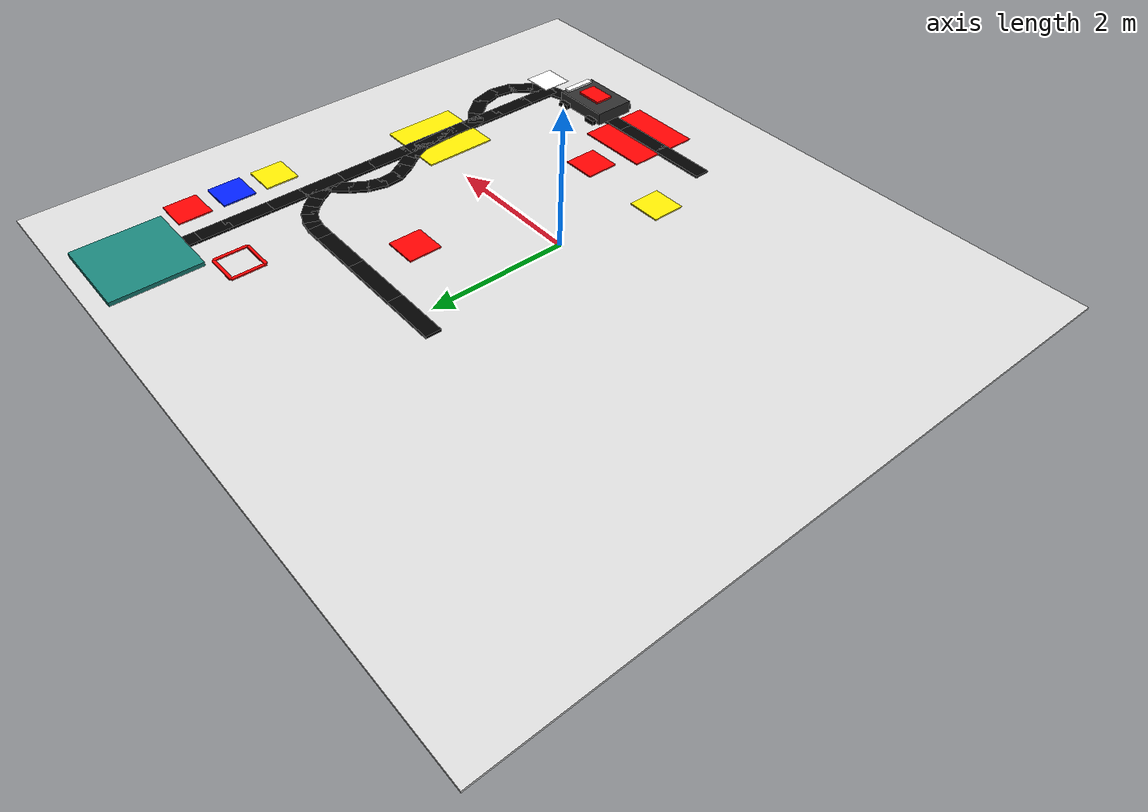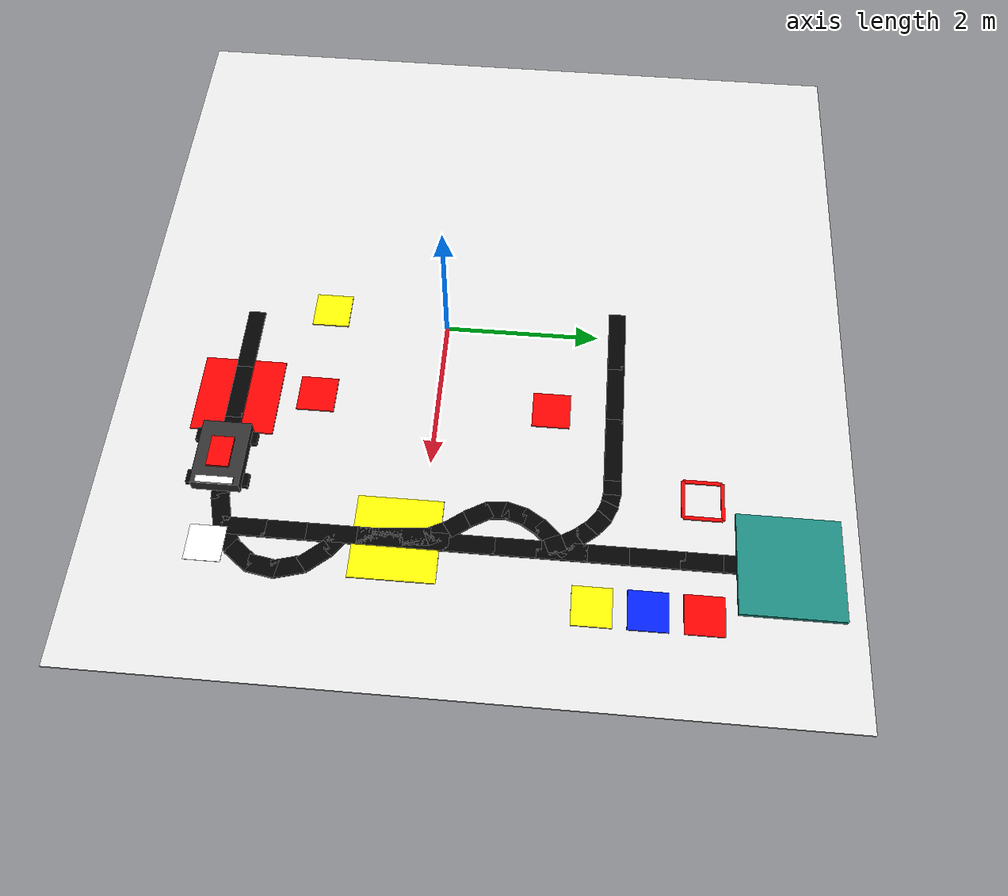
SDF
<sdf version="1.6">
 <world name="agv_factory_final_box_agv_v2">
  <include><uri>model://sun</uri></include>
  <model name="factory_floor">
   <static>true</static>
   <pose>0.0000 0.5500 -0.0150 0 0 0.0000</pose>
   <link name="link">
    <collision name="collision"><geometry><box><size>9.8000 9.3000 0.0300</size></box></geometry></collision>
    <visual name="visual">
     <geometry><box><size>9.8000 9.3000 0.0300</size></box></geometry>
     <material><ambient>0.86 0.86 0.86 1.0</ambient><diffuse>0.86 0.86 0.86 1.0</diffuse></material>
    </visual>
   </link>
  </model>
  <model name="main_loop_01">
   <static>true</static>
   <pose>1.8750 -2.5500 0.0175 0 0 3.1416</pose>
   <link name="link">
    <collision name="collision"><geometry><box><size>0.7100 0.2200 0.0350</size></box></geometry></collision>
    <visual name="visual">
     <geometry><box><size>0.7100 0.2200 0.0350</size></box></geometry>
     <material><ambient>0 0 0 1</ambient><diffuse>0 0 0 1</diffuse></material>
    </visual>
   </link>
  </model>
  <model name="main_loop_02">
   <static>true</static>
   <pose>1.1750 -2.5500 0.0175 0 0 3.1416</pose>
   <link name="link">
    <collision name="collision"><geometry><box><size>0.8100 0.2200 0.0350</size></box></geometry></collision>
    <visual name="visual">
     <geometry><box><size>0.8100 0.2200 0.0350</size></box></geometry>
     <material><ambient>0 0 0 1</ambient><diffuse>0 0 0 1</diffuse></material>
    </visual>
   </link>
  </model>
  <model name="main_loop_03">
   <static>true</static>
   <pose>0.4000 -2.5500 0.0175 0 0 3.1416</pose>
   <link name="link">
    <collision name="collision"><geometry><box><size>0.8600 0.2200 0.0350</size></box></geometry></collision>
    <visual name="visual">
     <geometry><box><size>0.8600 0.2200 0.0350</size></box></geometry>
     <material><ambient>0 0 0 1</ambient><diffuse>0 0 0 1</diffuse></material>
    </visual>
   </link>
  </model>
  <model name="main_loop_42">
   <static>true</static>
   <pose>0.0500 2.2500 0.0175 0 0 0.0000</pose>
   <link name="link">
    <collision name="collision"><geometry><box><size>0.8600 0.2200 0.0350</size></box></geometry></collision>
    <visual name="visual">
     <geometry><box><size>0.8600 0.2200 0.0350</size></box></geometry>
     <material><ambient>0 0 0 1</ambient><diffuse>0 0 0 1</diffuse></material>
    </visual>
   </link>
  </model>
  <model name="main_loop_43">
   <static>true</static>
   <pose>0.8500 2.2500 0.0175 0 0 0.0000</pose>
   <link name="link">
    <collision name="collision"><geometry><box><size>0.8600 0.2200 0.0350</size></box></geometry></collision>
    <visual name="visual">
     <geometry><box><size>0.8600 0.2200 0.0350</size></box></geometry>
     <material><ambient>0 0 0 1</ambient><diffuse>0 0 0 1</diffuse></material>
    </visual>
   </link>
  </model>
  <model name="main_loop_44">
   <static>true</static>
   <pose>1.6500 2.2500 0.0175 0 0 0.0000</pose>
   <link name="link">
    <collision name="collision"><geometry><box><size>0.8600 0.2200 0.0350</size></box></geometry></collision>
    <visual name="visual">
     <geometry><box><size>0.8600 0.2200 0.0350</size></box></geometry>
     <material><ambient>0 0 0 1</ambient><diffuse>0 0 0 1</diffuse></material>
    </visual>
   </link>
  </model>
  <model name="main_loop_45">
   <static>true</static>
   <pose>2.1450 2.2500 0.0175 0 0 0.0000</pose>
   <link name="link">
    <collision name="collision"><geometry><box><size>0.2500 0.2200 0.0350</size></box></geometry></collision>
    <visual name="visual">
     <geometry><box><size>0.2500 0.2200 0.0350</size></box></geometry>
     <material><ambient>0 0 0 1</ambient><diffuse>0 0 0 1</diffuse></material>
    </visual>
   </link>
  </model>
  <model name="main_loop_46">
   <static>true</static>
   <pose>2.3300 2.2350 0.0175 0 0 -0.1651</pose>
   <link name="link">
    <collision name="collision"><geometry><box><size>0.2425 0.2200 0.0350</size></box></geometry></collision>
    <visual name="visual">
     <geometry><box><size>0.2425 0.2200 0.0350</size></box></geometry>
     <material><ambient>0 0 0 1</ambient><diffuse>0 0 0 1</diffuse></material>
    </visual>
   </link>
  </model>
  <model name="main_loop_47">
   <static>true</static>
   <pose>2.5000 2.1850 0.0175 0 0 -0.4124</pose>
   <link name="link">
    <collision name="collision"><geometry><box><size>0.2346 0.2200 0.0350</size></box></geometry></collision>
    <visual name="visual">
     <geometry><box><size>0.2346 0.2200 0.0350</size></box></geometry>
     <material><ambient>0 0 0 1</ambient><diffuse>0 0 0 1</diffuse></material>
    </visual>
   </link>
  </model>
  <model name="main_loop_48">
   <static>true</static>
   <pose>2.6500 2.0900 0.0175 0 0 -0.7086</pose>
   <link name="link">
    <collision name="collision"><geometry><box><size>0.2444 0.2200 0.0350</size></box></geometry></collision>
    <visual name="visual">
     <geometry><box><size>0.2444 0.2200 0.0350</size></box></geometry>
     <material><ambient>0 0 0 1</ambient><diffuse>0 0 0 1</diffuse></material>
    </visual>
   </link>
  </model>
  <model name="main_loop_49">
   <static>true</static>
   <pose>2.7800 1.9550 0.0175 0 0 -0.8961</pose>
   <link name="link">
    <collision name="collision"><geometry><box><size>0.2521 0.2200 0.0350</size></box></geometry></collision>
    <visual name="visual">
     <geometry><box><size>0.2521 0.2200 0.0350</size></box></geometry>
     <material><ambient>0 0 0 1</ambient><diffuse>0 0 0 1</diffuse></material>
    </visual>
   </link>
  </model>
  <model name="main_loop_50">
   <static>true</static>
   <pose>2.8900 1.8000 0.0175 0 0 -1.0122</pose>
   <link name="link">
    <collision name="collision"><geometry><box><size>0.2487 0.2200 0.0350</size></box></geometry></collision>
    <visual name="visual">
     <geometry><box><size>0.2487 0.2200 0.0350</size></box></geometry>
     <material><ambient>0 0 0 1</ambient><diffuse>0 0 0 1</diffuse></material>
    </visual>
   </link>
  </model>
  <model name="main_loop_51">
   <static>true</static>
   <pose>2.9950 1.6700 0.0175 0 0 -0.7378</pose>
   <link name="link">
    <collision name="collision"><geometry><box><size>0.2087 0.2200 0.0350</size></box></geometry></collision>
    <visual name="visual">
     <geometry><box><size>0.2087 0.2200 0.0350</size></box></geometry>
     <material><ambient>0 0 0 1</ambient><diffuse>0 0 0 1</diffuse></material>
    </visual>
   </link>
  </model>
  <model name="main_loop_52">
   <static>true</static>
   <pose>2.9800 1.5900 0.0175 0 0 -2.7367</pose>
   <link name="link">
    <collision name="collision"><geometry><box><size>0.2123 0.2200 0.0350</size></box></geometry></collision>
    <visual name="visual">
     <geometry><box><size>0.2123 0.2200 0.0350</size></box></geometry>
     <material><ambient>0 0 0 1</ambient><diffuse>0 0 0 1</diffuse></material>
    </visual>
   </link>
  </model>
  <model name="main_loop_53">
   <static>true</static>
   <pose>2.8350 1.4800 0.0175 0 0 -2.3239</pose>
   <link name="link">
    <collision name="collision"><geometry><box><size>0.2793 0.2200 0.0350</size></box></geometry></collision>
    <visual name="visual">
     <geometry><box><size>0.2793 0.2200 0.0350</size></box></geometry>
     <material><ambient>0 0 0 1</ambient><diffuse>0 0 0 1</diffuse></material>
    </visual>
   </link>
  </model>
  <model name="main_loop_54">
   <static>true</static>
   <pose>2.7000 1.3000 0.0175 0 0 -2.1112</pose>
   <link name="link">
    <collision name="collision"><geometry><box><size>0.2932 0.2200 0.0350</size></box></geometry></collision>
    <visual name="visual">
     <geometry><box><size>0.2932 0.2200 0.0350</size></box></geometry>
     <material><ambient>0 0 0 1</ambient><diffuse>0 0 0 1</diffuse></material>
    </visual>
   </link>
  </model>
  <model name="main_loop_55">
   <static>true</static>
   <pose>2.6100 1.0900 0.0175 0 0 -1.8370</pose>
   <link name="link">
    <collision name="collision"><geometry><box><size>0.2880 0.2200 0.0350</size></box></geometry></collision>
    <visual name="visual">
     <geometry><box><size>0.2880 0.2200 0.0350</size></box></geometry>
     <material><ambient>0 0 0 1</ambient><diffuse>0 0 0 1</diffuse></material>
    </visual>
   </link>
  </model>
  <model name="main_loop_56">
   <static>true</static>
   <pose>2.5900 0.8700 0.0175 0 0 -1.4801</pose>
   <link name="link">
    <collision name="collision"><geometry><box><size>0.2809 0.2200 0.0350</size></box></geometry></collision>
    <visual name="visual">
     <geometry><box><size>0.2809 0.2200 0.0350</size></box></geometry>
     <material><ambient>0 0 0 1</ambient><diffuse>0 0 0 1</diffuse></material>
    </visual>
   </link>
  </model>
  <model name="main_loop_57">
   <static>true</static>
   <pose>2.6600 0.6500 0.0175 0 0 -1.0714</pose>
   <link name="link">
    <collision name="collision"><geometry><box><size>0.3106 0.2200 0.0350</size></box></geometry></collision>
    <visual name="visual">
     <geometry><box><size>0.3106 0.2200 0.0350</size></box></geometry>
     <material><ambient>0 0 0 1</ambient><diffuse>0 0 0 1</diffuse></material>
    </visual>
   </link>
  </model>
  <model name="main_loop_58">
   <static>true</static>
   <pose>2.8000 0.4300 0.0175 0 0 -0.9420</pose>
   <link name="link">
    <collision name="collision"><geometry><box><size>0.3320 0.2200 0.0350</size></box></geometry></collision>
    <visual name="visual">
     <geometry><box><size>0.3320 0.2200 0.0350</size></box></geometry>
     <material><ambient>0 0 0 1</ambient><diffuse>0 0 0 1</diffuse></material>
    </visual>
   </link>
  </model>
  <model name="main_loop_59">
   <static>true</static>
   <pose>2.9400 0.2000 0.0175 0 0 -1.1071</pose>
   <link name="link">
    <collision name="collision"><geometry><box><size>0.3283 0.2200 0.0350</size></box></geometry></collision>
    <visual name="visual">
     <geometry><box><size>0.3283 0.2200 0.0350</size></box></geometry>
     <material><ambient>0 0 0 1</ambient><diffuse>0 0 0 1</diffuse></material>
    </visual>
   </link>
  </model>
  <model name="main_loop_60">
   <static>true</static>
   <pose>3.0250 -0.2350 0.0175 0 0 -1.4916</pose>
   <link name="link">
    <collision name="collision"><geometry><box><size>0.6920 0.2200 0.0350</size></box></geometry></collision>
    <visual name="visual">
     <geometry><box><size>0.6920 0.2200 0.0350</size></box></geometry>
     <material><ambient>0 0 0 1</ambient><diffuse>0 0 0 1</diffuse></material>
    </visual>
   </link>
  </model>
  <model name="main_loop_61">
   <static>true</static>
   <pose>3.0500 -0.7500 0.0175 0 0 -1.5708</pose>
   <link name="link">
    <collision name="collision"><geometry><box><size>0.4600 0.2200 0.0350</size></box></geometry></collision>
    <visual name="visual">
     <geometry><box><size>0.4600 0.2200 0.0350</size></box></geometry>
     <material><ambient>0 0 0 1</ambient><diffuse>0 0 0 1</diffuse></material>
    </visual>
   </link>
  </model>
  <model name="main_loop_62">
   <static>true</static>
   <pose>3.1500 -1.0250 0.0175 0 0 -0.6435</pose>
   <link name="link">
    <collision name="collision"><geometry><box><size>0.3100 0.2200 0.0350</size></box></geometry></collision>
    <visual name="visual">
     <geometry><box><size>0.3100 0.2200 0.0350</size></box></geometry>
     <material><ambient>0 0 0 1</ambient><diffuse>0 0 0 1</diffuse></material>
    </visual>
   </link>
  </model>
  <model name="main_loop_63">
   <static>true</static>
   <pose>3.3550 -1.2250 0.0175 0 0 -0.8721</pose>
   <link name="link">
    <collision name="collision"><geometry><box><size>0.3865 0.2200 0.0350</size></box></geometry></collision>
    <visual name="visual">
     <geometry><box><size>0.3865 0.2200 0.0350</size></box></geometry>
     <material><ambient>0 0 0 1</ambient><diffuse>0 0 0 1</diffuse></material>
    </visual>
   </link>
  </model>
  <model name="main_loop_64">
   <static>true</static>
   <pose>3.5050 -1.5150 0.0175 0 0 -1.3045</pose>
   <link name="link">
    <collision name="collision"><geometry><box><size>0.4021 0.2200 0.0350</size></box></geometry></collision>
    <visual name="visual">
     <geometry><box><size>0.4021 0.2200 0.0350</size></box></geometry>
     <material><ambient>0 0 0 1</ambient><diffuse>0 0 0 1</diffuse></material>
    </visual>
   </link>
  </model>
  <model name="main_loop_65">
   <static>true</static>
   <pose>3.5250 -1.8300 0.0175 0 0 -1.7359</pose>
   <link name="link">
    <collision name="collision"><geometry><box><size>0.3641 0.2200 0.0350</size></box></geometry></collision>
    <visual name="visual">
     <geometry><box><size>0.3641 0.2200 0.0350</size></box></geometry>
     <material><ambient>0 0 0 1</ambient><diffuse>0 0 0 1</diffuse></material>
    </visual>
   </link>
  </model>
  <model name="main_loop_66">
   <static>true</static>
   <pose>3.4100 -2.1000 0.0175 0 0 -2.2143</pose>
   <link name="link">
    <collision name="collision"><geometry><box><size>0.3600 0.2200 0.0350</size></box></geometry></collision>
    <visual name="visual">
     <geometry><box><size>0.3600 0.2200 0.0350</size></box></geometry>
     <material><ambient>0 0 0 1</ambient><diffuse>0 0 0 1</diffuse></material>
    </visual>
   </link>
  </model>
  <model name="main_loop_67">
   <static>true</static>
   <pose>3.1800 -2.3100 0.0175 0 0 -2.5703</pose>
   <link name="link">
    <collision name="collision"><geometry><box><size>0.3929 0.2200 0.0350</size></box></geometry></collision>
    <visual name="visual">
     <geometry><box><size>0.3929 0.2200 0.0350</size></box></geometry>
     <material><ambient>0 0 0 1</ambient><diffuse>0 0 0 1</diffuse></material>
    </visual>
   </link>
  </model>
  <model name="main_loop_68">
   <static>true</static>
   <pose>2.8600 -2.4500 0.0175 0 0 -2.8706</pose>
   <link name="link">
    <collision name="collision"><geometry><box><size>0.4336 0.2200 0.0350</size></box></geometry></collision>
    <visual name="visual">
     <geometry><box><size>0.4336 0.2200 0.0350</size></box></geometry>
     <material><ambient>0 0 0 1</ambient><diffuse>0 0 0 1</diffuse></material>
    </visual>
   </link>
  </model>
  <model name="main_loop_69">
   <static>true</static>
   <pose>2.4400 -2.5250 0.0175 0 0 -3.0378</pose>
   <link name="link">
    <collision name="collision"><geometry><box><size>0.5426 0.2200 0.0350</size></box></geometry></collision>
    <visual name="visual">
     <geometry><box><size>0.5426 0.2200 0.0350</size></box></geometry>
     <material><ambient>0 0 0 1</ambient><diffuse>0 0 0 1</diffuse></material>
    </visual>
   </link>
  </model>
  <model name="right_vertical_01">
   <static>true</static>
   <pose>3.0500 -1.6250 0.0175 0 0 1.5708</pose>
   <link name="link">
    <collision name="collision"><geometry><box><size>0.6100 0.2200 0.0350</size></box></geometry></collision>
    <visual name="visual">
     <geometry><box><size>0.6100 0.2200 0.0350</size></box></geometry>
     <material><ambient>0 0 0 1</ambient><diffuse>0 0 0 1</diffuse></material>
    </visual>
   </link>
  </model>
  <model name="right_vertical_02">
   <static>true</static>
   <pose>3.0500 -1.0750 0.0175 0 0 1.5708</pose>
   <link name="link">
    <collision name="collision"><geometry><box><size>0.6100 0.2200 0.0350</size></box></geometry></collision>
    <visual name="visual">
     <geometry><box><size>0.6100 0.2200 0.0350</size></box></geometry>
     <material><ambient>0 0 0 1</ambient><diffuse>0 0 0 1</diffuse></material>
    </visual>
   </link>
  </model>
  <model name="right_vertical_03">
   <static>true</static>
   <pose>3.0500 -0.5250 0.0175 0 0 1.5708</pose>
   <link name="link">
    <collision name="collision"><geometry><box><size>0.6100 0.2200 0.0350</size></box></geometry></collision>
    <visual name="visual">
     <geometry><box><size>0.6100 0.2200 0.0350</size></box></geometry>
     <material><ambient>0 0 0 1</ambient><diffuse>0 0 0 1</diffuse></material>
    </visual>
   </link>
  </model>
  <model name="right_vertical_04">
   <static>true</static>
   <pose>3.0500 0.0250 0.0175 0 0 1.5708</pose>
   <link name="link">
    <collision name="collision"><geometry><box><size>0.6100 0.2200 0.0350</size></box></geometry></collision>
    <visual name="visual">
     <geometry><box><size>0.6100 0.2200 0.0350</size></box></geometry>
     <material><ambient>0 0 0 1</ambient><diffuse>0 0 0 1</diffuse></material>
    </visual>
   </link>
  </model>
  <model name="right_vertical_05">
   <static>true</static>
   <pose>3.0500 0.5750 0.0175 0 0 1.5708</pose>
   <link name="link">
    <collision name="collision"><geometry><box><size>0.6100 0.2200 0.0350</size></box></geometry></collision>
    <visual name="visual">
     <geometry><box><size>0.6100 0.2200 0.0350</size></box></geometry>
     <material><ambient>0 0 0 1</ambient><diffuse>0 0 0 1</diffuse></material>
    </visual>
   </link>
  </model>
  <model name="right_vertical_06">
   <static>true</static>
   <pose>3.0500 1.1250 0.0175 0 0 1.5708</pose>
   <link name="link">
    <collision name="collision"><geometry><box><size>0.6100 0.2200 0.0350</size></box></geometry></collision>
    <visual name="visual">
     <geometry><box><size>0.6100 0.2200 0.0350</size></box></geometry>
     <material><ambient>0 0 0 1</ambient><diffuse>0 0 0 1</diffuse></material>
    </visual>
   </link>
  </model>
  <model name="right_vertical_07">
   <static>true</static>
   <pose>3.0500 1.6750 0.0175 0 0 1.5708</pose>
   <link name="link">
    <collision name="collision"><geometry><box><size>0.6100 0.2200 0.0350</size></box></geometry></collision>
    <visual name="visual">
     <geometry><box><size>0.6100 0.2200 0.0350</size></box></geometry>
     <material><ambient>0 0 0 1</ambient><diffuse>0 0 0 1</diffuse></material>
    </visual>
   </link>
  </model>
  <model name="right_vertical_08">
   <static>true</static>
   <pose>3.0500 2.2250 0.0175 0 0 1.5708</pose>
   <link name="link">
    <collision name="collision"><geometry><box><size>0.6100 0.2200 0.0350</size></box></geometry></collision>
    <visual name="visual">
     <geometry><box><size>0.6100 0.2200 0.0350</size></box></geometry>
     <material><ambient>0 0 0 1</ambient><diffuse>0 0 0 1</diffuse></material>
    </visual>
   </link>
  </model>
  <model name="right_vertical_09">
   <static>true</static>
   <pose>3.0500 2.8000 0.0175 0 0 1.5708</pose>
   <link name="link">
    <collision name="collision"><geometry><box><size>0.6600 0.2200 0.0350</size></box></geometry></collision>
    <visual name="visual">
     <geometry><box><size>0.6600 0.2200 0.0350</size></box></geometry>
     <material><ambient>0 0 0 1</ambient><diffuse>0 0 0 1</diffuse></material>
    </visual>
   </link>
  </model>
  <model name="right_vertical_10">
   <static>true</static>
   <pose>3.0500 3.3250 0.0175 0 0 1.5708</pose>
   <link name="link">
    <collision name="collision"><geometry><box><size>0.5100 0.2200 0.0350</size></box></geometry></collision>
    <visual name="visual">
     <geometry><box><size>0.5100 0.2200 0.0350</size></box></geometry>
     <material><ambient>0 0 0 1</ambient><diffuse>0 0 0 1</diffuse></material>
    </visual>
   </link>
  </model>
  <model name="right_vertical_11">
   <static>true</static>
   <pose>3.0500 3.7250 0.0175 0 0 1.5708</pose>
   <link name="link">
    <collision name="collision"><geometry><box><size>0.4100 0.2200 0.0350</size></box></geometry></collision>
    <visual name="visual">
     <geometry><box><size>0.4100 0.2200 0.0350</size></box></geometry>
     <material><ambient>0 0 0 1</ambient><diffuse>0 0 0 1</diffuse></material>
    </visual>
   </link>
  </model>
  <model name="right_vertical_12">
   <static>true</static>
   <pose>3.0500 4.1750 0.0175 0 0 1.5708</pose>
   <link name="link">
    <collision name="collision"><geometry><box><size>0.6100 0.2200 0.0350</size></box></geometry></collision>
    <visual name="visual">
     <geometry><box><size>0.6100 0.2200 0.0350</size></box></geometry>
     <material><ambient>0 0 0 1</ambient><diffuse>0 0 0 1</diffuse></material>
    </visual>
   </link>
  </model>
  <model name="right_bottom_join_01">
   <static>true</static>
   <pose>3.0500 -2.1500 0.0175 0 0 -1.5708</pose>
   <link name="link">
    <collision name="collision"><geometry><box><size>0.5600 0.2200 0.0350</size></box></geometry></collision>
    <visual name="visual">
     <geometry><box><size>0.5600 0.2200 0.0350</size></box></geometry>
     <material><ambient>0 0 0 1</ambient><diffuse>0 0 0 1</diffuse></material>
    </visual>
   </link>
  </model>
  <model name="red_agv01_start_area">
   <static>true</static>
   <pose>1.2500 -2.5500 0.0100 0 0 0.0000</pose>
   <link name="link">
    <collision name="collision"><geometry><box><size>1.0500 1.0500 0.0200</size></box></geometry></collision>
    <visual name="visual">
     <geometry><box><size>1.0500 1.0500 0.0200</size></box></geometry>
     <material><ambient>1.0 0.0 0.0 1.0</ambient><diffuse>1.0 0.0 0.0 1.0</diffuse></material>
    </visual>
   </link>
  </model>
  <model name="yellow_buffer_area">
   <static>true</static>
   <pose>3.0500 -0.3000 0.0100 0 0 0.0000</pose>
   <link name="link">
    <collision name="collision"><geometry><box><size>1.0500 1.0500 0.0200</size></box></geometry></collision>
    <visual name="visual">
     <geometry><box><size>1.0500 1.0500 0.0200</size></box></geometry>
     <material><ambient>1.0 0.92 0.0 1.0</ambient><diffuse>1.0 0.92 0.0 1.0</diffuse></material>
    </visual>
   </link>
  </model>
  <model name="inout_area">
   <static>true</static>
   <pose>3.0500 4.3500 0.0650 0 0 0.0000</pose>
   <link name="link">
    <collision name="collision"><geometry><box><size>1.2500 1.2500 0.0600</size></box></geometry></collision>
    <visual name="visual">
     <geometry><box><size>1.2500 1.2500 0.0600</size></box></geometry>
     <material><ambient>0.1 0.52 0.48 1.0</ambient><diffuse>0.1 0.52 0.48 1.0</diffuse></material>
    </visual>
   </link>
  </model>
  <model name="finished_red_box">
   <static>true</static>
   <pose>1.1500 1.4500 0.0100 0 0 0.0000</pose>
   <link name="link">
    <collision name="collision"><geometry><box><size>0.4800 0.4800 0.0200</size></box></geometry></collision>
    <visual name="visual">
     <geometry><box><size>0.4800 0.4800 0.0200</size></box></geometry>
     <material><ambient>1.0 0.0 0.0 1.0</ambient><diffuse>1.0 0.0 0.0 1.0</diffuse></material>
    </visual>
   </link>
  </model>
  <model name="material_yellow_box">
   <static>true</static>
   <pose>-0.1500 -1.5500 0.0100 0 0 0.0000</pose>
   <link name="link">
    <collision name="collision"><geometry><box><size>0.4800 0.4800 0.0200</size></box></geometry></collision>
    <visual name="visual">
     <geometry><box><size>0.4800 0.4800 0.0200</size></box></geometry>
     <material><ambient>1.0 0.92 0.0 1.0</ambient><diffuse>1.0 0.92 0.0 1.0</diffuse></material>
    </visual>
   </link>
  </model>
  <model name="material_red_box">
   <static>true</static>
   <pose>1.1500 -1.5500 0.0100 0 0 0.0000</pose>
   <link name="link">
    <collision name="collision"><geometry><box><size>0.4800 0.4800 0.0200</size></box></geometry></collision>
    <visual name="visual">
     <geometry><box><size>0.4800 0.4800 0.0200</size></box></geometry>
     <material><ambient>1.0 0.0 0.0 1.0</ambient><diffuse>1.0 0.0 0.0 1.0</diffuse></material>
    </visual>
   </link>
  </model>
  <model name="inout_red_box">
   <static>true</static>
   <pose>3.7000 3.3500 0.0100 0 0 0.0000</pose>
   <link name="link">
    <collision name="collision"><geometry><box><size>0.4800 0.4800 0.0200</size></box></geometry></collision>
    <visual name="visual">
     <geometry><box><size>0.4800 0.4800 0.0200</size></box></geometry>
     <material><ambient>1.0 0.0 0.0 1.0</ambient><diffuse>1.0 0.0 0.0 1.0</diffuse></material>
    </visual>
   </link>
  </model>
  <model name="inout_yellow_box">
   <static>true</static>
   <pose>3.7000 2.0500 0.0100 0 0 0.0000</pose>
   <link name="link">
    <collision name="collision"><geometry><box><size>0.4800 0.4800 0.0200</size></box></geometry></collision>
    <visual name="visual">
     <geometry><box><size>0.4800 0.4800 0.0200</size></box></geometry>
     <material><ambient>1.0 0.92 0.0 1.0</ambient><diffuse>1.0 0.92 0.0 1.0</diffuse></material>
    </visual>
   </link>
  </model>
  <model name="inout_blue_box">
   <static>true</static>
   <pose>3.7000 2.7000 0.0100 0 0 0.0000</pose>
   <link name="link">
    <collision name="collision"><geometry><box><size>0.4800 0.4800 0.0200</size></box></geometry></collision>
    <visual name="visual">
     <geometry><box><size>0.4800 0.4800 0.0200</size></box></geometry>
     <material><ambient>0.0 0.12 1.0 1.0</ambient><diffuse>0.0 0.12 1.0 1.0</diffuse></material>
    </visual>
   </link>
  </model>
  <model name="inbound_box_top_border">
   <static>true</static>
   <pose>2.2500 3.5900 0.0100 0 0 0.0000</pose>
   <link name="link">
    <collision name="collision"><geometry><box><size>0.4800 0.0450 0.0200</size></box></geometry></collision>
    <visual name="visual">
     <geometry><box><size>0.4800 0.0450 0.0200</size></box></geometry>
     <material><ambient>1.0 0.0 0.0 1.0</ambient><diffuse>1.0 0.0 0.0 1.0</diffuse></material>
    </visual>
   </link>
  </model>
  <model name="inbound_box_bottom_border">
   <static>true</static>
   <pose>2.2500 3.1100 0.0100 0 0 0.0000</pose>
   <link name="link">
    <collision name="collision"><geometry><box><size>0.4800 0.0450 0.0200</size></box></geometry></collision>
    <visual name="visual">
     <geometry><box><size>0.4800 0.0450 0.0200</size></box></geometry>
     <material><ambient>1.0 0.0 0.0 1.0</ambient><diffuse>1.0 0.0 0.0 1.0</diffuse></material>
    </visual>
   </link>
  </model>
  <model name="inbound_box_left_border">
   <static>true</static>
   <pose>2.0100 3.3500 0.0100 0 0 0.0000</pose>
   <link name="link">
    <collision name="collision"><geometry><box><size>0.0450 0.4800 0.0200</size></box></geometry></collision>
    <visual name="visual">
     <geometry><box><size>0.0450 0.4800 0.0200</size></box></geometry>
     <material><ambient>1.0 0.0 0.0 1.0</ambient><diffuse>1.0 0.0 0.0 1.0</diffuse></material>
    </visual>
   </link>
  </model>
  <model name="inbound_box_right_border">
   <static>true</static>
   <pose>2.4900 3.3500 0.0100 0 0 0.0000</pose>
   <link name="link">
    <collision name="collision"><geometry><box><size>0.0450 0.4800 0.0200</size></box></geometry></collision>
    <visual name="visual">
     <geometry><box><size>0.0450 0.4800 0.0200</size></box></geometry>
     <material><ambient>1.0 0.0 0.0 1.0</ambient><diffuse>1.0 0.0 0.0 1.0</diffuse></material>
    </visual>
   </link>
  </model>
  <model name="AGV01">
   <static>false</static>
   <pose>2.2000 -2.5500 0.1600 0 0 0.0000</pose>
   <link name="base_link">
    <collision name="body_collision"><geometry><box><size>0.8500 0.6000 0.1800</size></box></geometry></collision>
    <visual name="body_visual">
     <geometry><box><size>0.8500 0.6000 0.1800</size></box></geometry>
     <material><ambient>0.18 0.18 0.18 1.0</ambient><diffuse>0.18 0.18 0.18 1.0</diffuse></material>
    </visual>
    <visual name="front_direction_marker">
     <pose>0.3800 0 0.1050 0 0 0</pose>
     <geometry><box><size>0.0900 0.4600 0.0300</size></box></geometry>
     <material><ambient>1.0 1.0 1.0 1.0</ambient><diffuse>1.0 1.0 1.0 1.0</diffuse></material>
    </visual>
    <visual name="top_id_marker">
     <pose>0 0 0.1150 0 0 0</pose>
     <geometry><box><size>0.4000 0.2800 0.0300</size></box></geometry>
     <material><ambient>1.0 0.0 0.0 1.0</ambient><diffuse>1.0 0.0 0.0 1.0</diffuse></material>
    </visual>
    <visual name="left_front_wheel">
     <pose>0.2900 0.3450 -0.0550 0 0 0</pose>
     <geometry><box><size>0.1700 0.0750 0.0700</size></box></geometry>
     <material><ambient>0.0 0.0 0.0 1.0</ambient><diffuse>0.0 0.0 0.0 1.0</diffuse></material>
    </visual>
    <visual name="left_rear_wheel">
     <pose>-0.2900 0.3450 -0.0550 0 0 0</pose>
     <geometry><box><size>0.1700 0.0750 0.0700</size></box></geometry>
     <material><ambient>0.0 0.0 0.0 1.0</ambient><diffuse>0.0 0.0 0.0 1.0</diffuse></material>
    </visual>
    <visual name="right_front_wheel">
     <pose>0.2900 -0.3450 -0.0550 0 0 0</pose>
     <geometry><box><size>0.1700 0.0750 0.0700</size></box></geometry>
     <material><ambient>0.0 0.0 0.0 1.0</ambient><diffuse>0.0 0.0 0.0 1.0</diffuse></material>
    </visual>
    <visual name="right_rear_wheel">
     <pose>-0.2900 -0.3450 -0.0550 0 0 0</pose>
     <geometry><box><size>0.1700 0.0750 0.0700</size></box></geometry>
     <material><ambient>0.0 0.0 0.0 1.0</ambient><diffuse>0.0 0.0 0.0 1.0</diffuse></material>
    </visual>
   </link>
   <link name="agv01_camera_link">
    <pose>0.45 0 0.35 0 0.7854 0</pose>
    <inertial>
     <mass>0.01</mass>
     <inertia><ixx>0.00001</ixx><iyy>0.00001</iyy><izz>0.00001</izz><ixy>0</ixy><ixz>0</ixz><iyz>0</iyz></inertia>
    </inertial>
    <sensor name="agv01_rgb_camera" type="camera">
     <always_on>true</always_on>
     <update_rate>20</update_rate>
     <visualize>true</visualize>
     <camera>
      <horizontal_fov>1.047</horizontal_fov>
      <image><width>640</width><height>480</height><format>R8G8B8</format></image>
      <clip><near>0.01</near><far>100</far></clip>
     </camera>
     <plugin name="agv01_camera_ros_plugin" filename="libgazebo_ros_camera.so">
      <ros><namespace>/AGV01</namespace></ros>
      <camera_name>agv01_camera</camera_name>
      <frame_name>agv01_camera_link</frame_name>
     </plugin>
    </sensor>
   </link>
   <joint name="agv01_camera_joint" type="fixed">
    <parent>base_link</parent>
    <child>agv01_camera_link</child>
   </joint>
  </model>
  <model name="marker_900_white_back">
   <static>true</static>
   <pose>3.3000 -2.5500 0.045 0 0 0</pose>
   <link name="link">
    <visual name="visual">
     <geometry><box><size>0.45 0.45 0.005</size></box></geometry>
     <material><ambient>1 1 1 1</ambient><diffuse>1 1 1 1</diffuse></material>
    </visual>
   </link>
  </model>
 </world>
</sdf>
